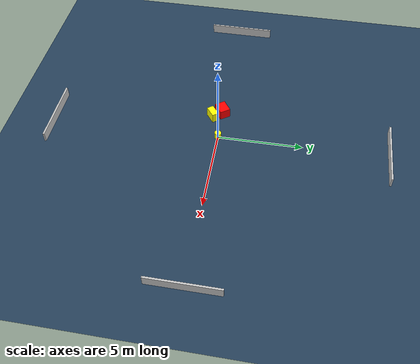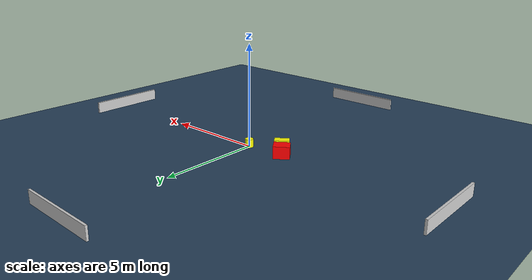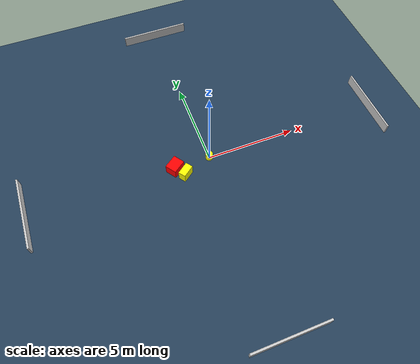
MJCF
<?xml version="1.0" ?>
<mujoco model="generated_environment">
  <option timestep="0.01" integrator="RK4" cone="elliptic"/>
  <default>
    <geom density="1"/>
  </default>
  <asset>
    <texture builtin="gradient" height="3072" name="skybox" rgb1="0.3 0.5 0.7" rgb2="0 0 0" type="skybox" width="512"/>
    <texture builtin="checker" height="300" name="groundplane" rgb1="0.2 0.3 0.4" rgb2="0.1 0.2 0.3" type="2d" width="300"/>
    <material name="groundplane" reflectance="0.2" texrepeat="5 5" texture="groundplane"/>
  </asset>
  <worldbody>
    <light dir="0 0 -1" directional="true" pos="0 0 1.5"/>
    <geom condim="3" friction="0.5 0.005 0.001" material="groundplane" name="floor" pos="0 0 0" size="0 0 0.05" type="plane"/>
    <body name="walls">
      <geom name="wall_1" condim="4" pos="-10.0 0.0 0.3" rgba="0.800000011920929 0.800000011920929 0.800000011920929 1.0" size="0.05 2.0 0.3" type="box"/>
      <geom name="wall_2" condim="4" pos="10.0 0.0 0.3" rgba="0.800000011920929 0.800000011920929 0.800000011920929 1.0" size="0.05 2.0 0.3" type="box"/>
      <geom name="wall_3" condim="4" pos="0.0 -10.0 0.3" rgba="0.800000011920929 0.800000011920929 0.800000011920929 1.0" size="2.0 0.05 0.3" type="box"/>
      <geom name="wall_4" condim="4" pos="0.0 10.0 0.3" rgba="0.800000011920929 0.800000011920929 0.800000011920929 1.0" size="2.0 0.05 0.3" type="box"/>
    </body>
    <body name="robot">
      <joint name="joint_x" type="slide" pos="0 0 0" axis="1 0 0"/>
      <joint name="joint_y" type="slide" pos="0 0 0" axis="0 1 0"/>
      <geom name="robot" type="cylinder" pos="0.0 0.0 0.2" size="0.2 0.2 0.0" mass="5.0" friction="1.0 0.005 0.0001" condim="4" rgba="1.0 1.0 0.0 1.0"/>
    </body>
    <body name="obstacle_1_movable">
      <geom name="obstacle_1_movable" condim="4" pos="-1.5606884375879821 -0.5793565976167987 0.3" euler="0 0 216.87896978824566" friction="0.0 0.005 0.001" rgba="1.0 1.0 0.0 1.0" size="0.3586615233520781 0.20446531245891622 0.3" type="box" mass="0.1"/>
      <joint type="free"/>
    </body>
    <body name="obstacle_2_static">
      <geom name="obstacle_2_static" condim="4" pos="-1.983930657350543 -0.054024232786762647 0.3" euler="0 0 125.50815612247979" friction="0.0 0.005 0.001" rgba="1.0 0.0 0.0 1.0" size="0.3197646361931025 0.3906823827610827 0.3" type="box"/>
    </body>
  </worldbody>
  <actuator>
    <motor name="actuator_x" joint="joint_x" gear="1" ctrlrange="-1 1"/>
    <motor name="actuator_y" joint="joint_y" gear="1" ctrlrange="-1 1"/>
  </actuator>
</mujoco>
